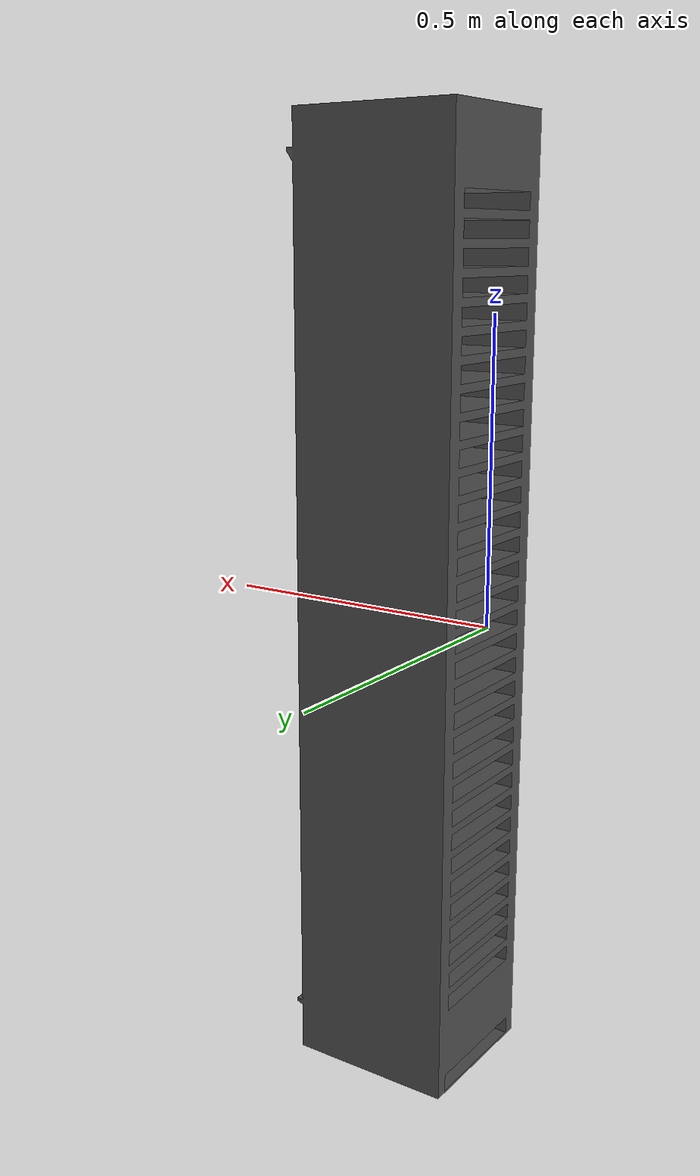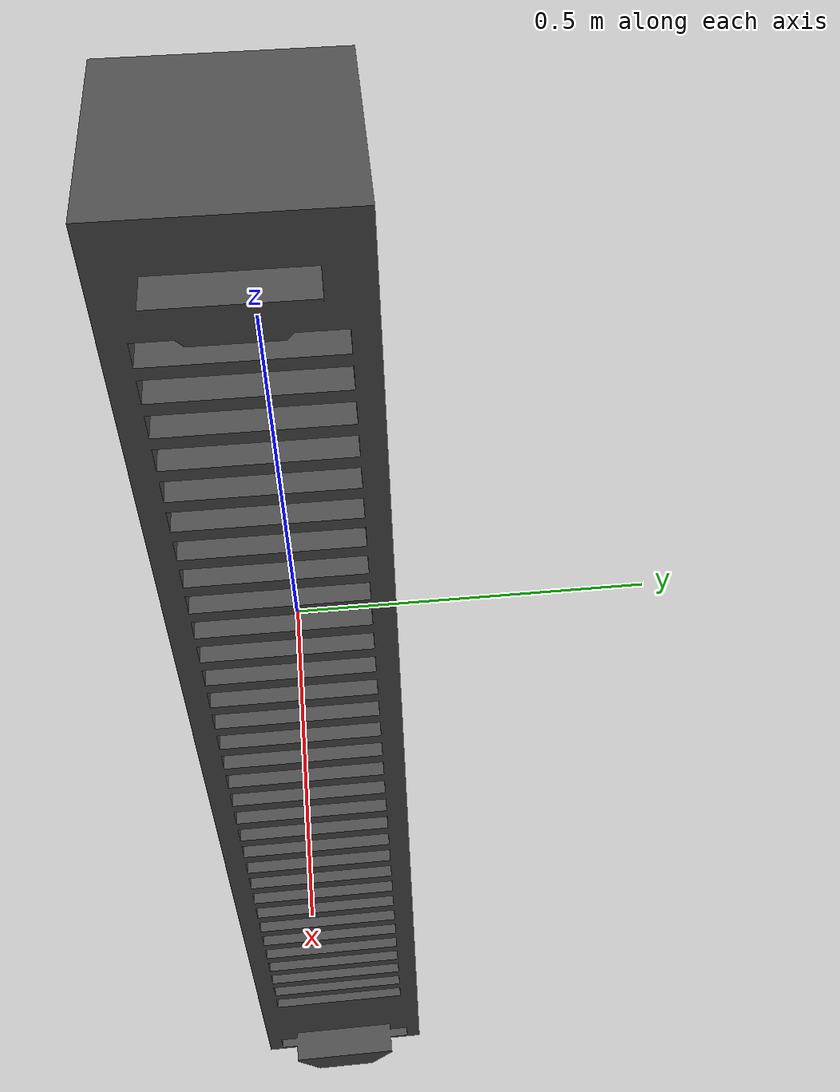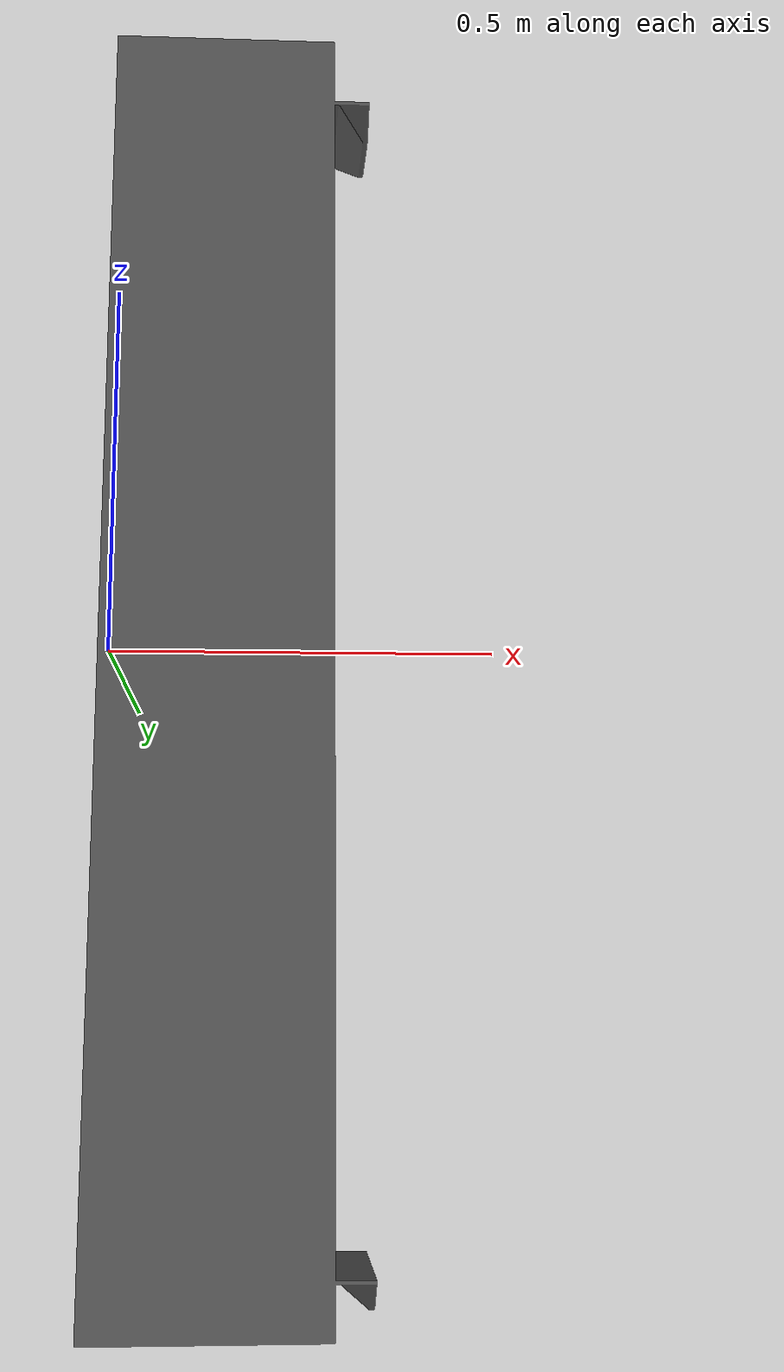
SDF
<?xml version="1.0" ?>
<sdf version="1.8">
  <model name="psr" canonical_link="psr_link">
    <static>false</static>
    <link name="psr_link">
      <pose>0.1435 0 0 1.5708 0 -1.5708</pose>

        <inertial>
            <mass>6.0</mass>
            <inertia>
            <ixx>2.2</ixx>
            <ixy>0</ixy>
            <ixz>0</ixz>
            <iyy>0.2</iyy>
            <iyz>0</iyz>
            <izz>2.24</izz>
            </inertia>
        </inertial>
      <!-- Visual representation using your DAE file -->
      <visual name="visual">
       <pose>0 0 -0.1435 0 0 0</pose>
        <geometry>
          <mesh>
            <uri>file:///home/meditab/Desktop/agv_ws/src/hey_agv/urdf/PSR_Mock_psr.dae</uri>
            <scale>1 1 1</scale>
          </mesh>
        </geometry>
      </visual>

      <!-- Collision geometry - enabled for static model -->
      <collision name="collision">
        <pose>0 0 -0.1435 0 0 0</pose>
        <geometry>
          <mesh>
            <uri>file:///home/meditab/Desktop/agv_ws/src/hey_agv/urdf/PSR_Mock_psr.dae</uri>
            <scale>1 1 1</scale>
          </mesh>
        </geometry>
        <surface>
          <contact>
            <collide_bitmask>0x01</collide_bitmask>
          </contact>
          <friction>
            <ode>
              <mu>0.1</mu>
              <mu2>0.1</mu2>
            </ode>
          </friction>
        </surface>
      </collision>
    </link>
  </model>
</sdf>
